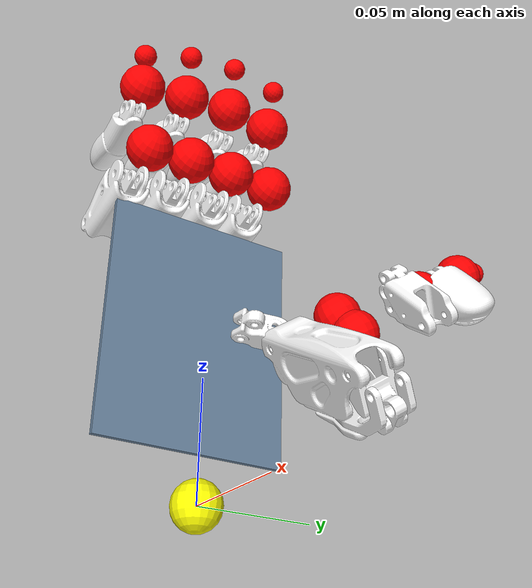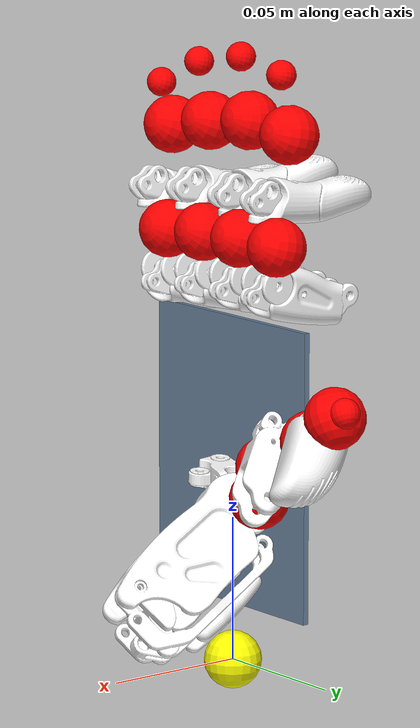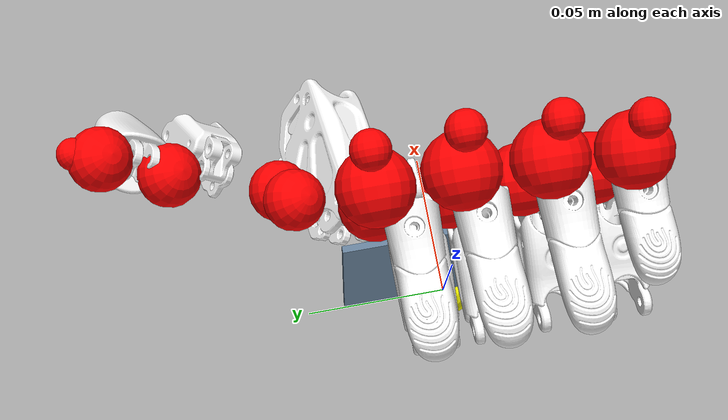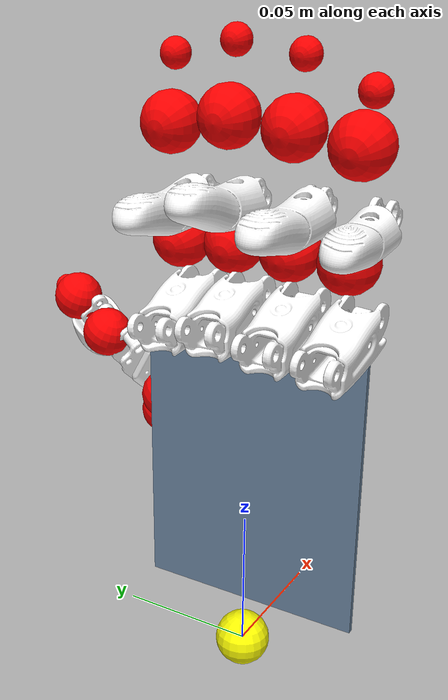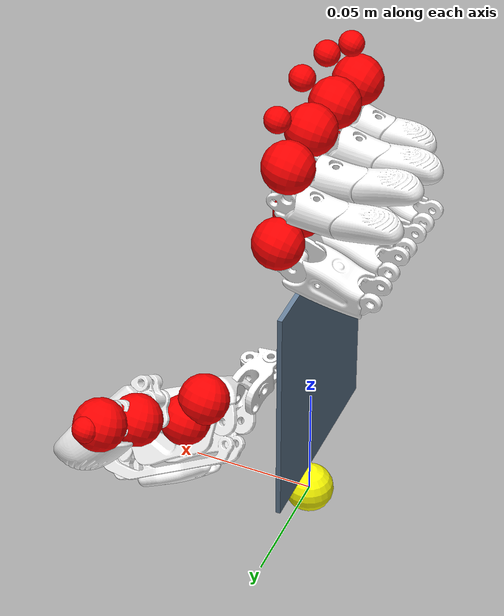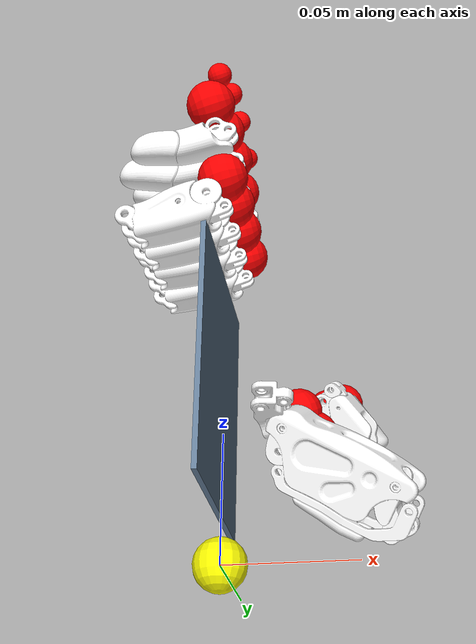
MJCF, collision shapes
<mujoco model="rm_75_description">
  <compiler angle="radian" autolimits="true"/>
  <statistic meansize="0.119253" extent="0.945417" center="-2.961e-06 0.00561221 0.418652"/>
  <asset>
    <material name="robot0:MatViz" specular="0.75" shininess="0.1" reflectance="0.5" rgba="0.93 0.93 0.93 1"></material>
    <material name="robot0:MatColl" specular="1" shininess="0.3" reflectance="0.5" rgba="0.4 0.5 0.6 1"></material>

    <mesh name="R_hand_base_link" file="/home/ubuntu/Documents/DexGraspNet/grasp_generation/mjcf/meshes/R_hand_base_link.STL"/>
    <mesh name="R_thumb_proximal_base" file="/home/ubuntu/Documents/DexGraspNet/grasp_generation/mjcf/meshes/R_thumb_proximal_base.STL"/>
    <mesh name="R_thumb_proximal" file="/home/ubuntu/Documents/DexGraspNet/grasp_generation/mjcf/meshes/R_thumb_proximal.STL"/>
    <mesh name="R_thumb_intermediate" file="/home/ubuntu/Documents/DexGraspNet/grasp_generation/mjcf/meshes/R_thumb_intermediate.STL"/>
    <mesh name="R_thumb_distal" file="/home/ubuntu/Documents/DexGraspNet/grasp_generation/mjcf/meshes/R_thumb_distal.STL"/>
    <mesh name="R_index_proximal" file="/home/ubuntu/Documents/DexGraspNet/grasp_generation/mjcf/meshes/R_index_proximal.STL"/>
    <mesh name="R_index_distal" file="/home/ubuntu/Documents/DexGraspNet/grasp_generation/mjcf/meshes/R_index_distal.STL"/>
    <mesh name="R_middle_proximal" file="/home/ubuntu/Documents/DexGraspNet/grasp_generation/mjcf/meshes/R_middle_proximal.STL"/>
    <mesh name="R_middle_distal" file="/home/ubuntu/Documents/DexGraspNet/grasp_generation/mjcf/meshes/R_middle_distal.STL"/>
    <mesh name="R_ring_proximal" file="/home/ubuntu/Documents/DexGraspNet/grasp_generation/mjcf/meshes/R_ring_proximal.STL"/>
    <mesh name="R_ring_distal" file="/home/ubuntu/Documents/DexGraspNet/grasp_generation/mjcf/meshes/R_ring_distal.STL"/>
    <mesh name="R_pinky_proximal" file="/home/ubuntu/Documents/DexGraspNet/grasp_generation/mjcf/meshes/R_pinky_proximal.STL"/>
    <mesh name="R_pinky_distal" file="/home/ubuntu/Documents/DexGraspNet/grasp_generation/mjcf/meshes/R_pinky_distal.STL"/>
  </asset>

  <default>
    <default class="base">
        <joint axis="0 0 1" range="-0.47 0.47"/>
        <position ctrlrange="-0.47 0.47"/>
    </default>
    <default class="proximal">
      <joint range="-0.196 1.61"/>
      <position ctrlrange="-0.196 1.61"/>
    </default>
    <default class="medial">
      <joint range="-0.174 1.709"/>
      <position ctrlrange="-0.174 1.709"/>
    </default>
    <default class="distal">
      <joint range="-0.227 1.618"/>
      <position ctrlrange="-0.227 1.618"/>
    </default>
    <default class="thumb_base">
        <joint range="0.263 1.396"/>
        <position ctrlrange="0 3.14" kp="0.5"/>
    </default>
    <default class="right_hand">
      <joint limited="true" damping="0.05" armature="0.0002" frictionloss="0.01"/>
      <general ctrllimited="true" forcelimited="true"></general>
      <geom friction="1 0.005 0.001" condim="3" margin="0.0005" contype="1" conaffinity="1"></geom>
    </default>

    <default class="robot0:D_Vizual">
        <geom material="robot0:MatViz" contype="0" conaffinity="0" group="1" type="mesh"></geom>
    </default>
    <default class="robot0:DC_Hand">
        <geom material="robot0:MatColl" contype="1" conaffinity="0" group="4"></geom>
    </default>

    <default class="rm_75">
      <material specular="0.5" shininess="0.25"/>
      <joint axis="0 1 0" range="-6.28319 6.28319" armature="0.1"/>
      <default class="visual">
        <geom type="mesh" contype="0" conaffinity="0" group="2"/>
      </default>
    </default>
  </default>

  <worldbody>
    <body name="origin">
      <geom name="origin" type="sphere" size="0.01" rgba="1 1 0 1"/>
    </body>
    <body name="right_hand_base" euler="0 0 -1.57">
      <body name="site_wrist">
        <site name="site_wrist" rgba="1 0 0 1"/>
        <geom name="site_wrist_visual" type="sphere" size="0.007" rgba="1 0 0 1"/>
      </body>
      <body childclass="right_hand" pos="0.078 0.248 0.08" euler="-1.57 -3.14 -3.14">
        <body name="R_hand_base" >
        <geom class="robot0:D_Vizual" name="robot0:D_Vizual_Base" quat="0.707107 -0.707107 0 0" type="mesh" rgba="1 1 1 0.5" mesh="R_hand_base_link"/>
        <geom class="robot0:DC_Hand" name="robot0:DC_Hand_Base" type="box" pos="-0.075 -0.01 0.25" quat="0.707107 -0.707107 0 0" size="0.04 0.001 0.05" rgba="0.4 0.5 0.6 0.1"></geom>
        </body>
        <body name="R_thumb_proximal_base" pos="-0.098633 -0.011364 0.23173" quat="0.990013 1.83152e-06 -0.140974 2.57024e-07">
          <inertial pos="-0.0048772 -0.010163 0.00044069" quat="0.075637 0.631378 -0.107678 0.764229" mass="0.0018869" diaginertia="8.66028e-08 6.87321e-08 4.94192e-08"/>
          <joint name="R_thumb_MCP_joint1" pos="0 0 0" axis="0 -1 0" range="0.0 1.3"/>
          <geom class="robot0:D_Vizual" name="robot0:D_Vizual_Thumb_1" type="mesh" rgba="1 1 1 0.5" mesh="R_thumb_proximal_base"/>
          <geom class="robot0:DC_Hand" name="robot0:DC_Hand_Thumb_1" type="mesh" rgba="1 1 1 0.5" mesh="R_thumb_proximal_base"/>
          <body name="R_thumb_proximal" pos="-0.0115 -0.011843 0" euler="1.571 2.577 -1.571">
            <inertial pos="-3.8592e-05 0.02533 -0.0017007" quat="0.656826 0.754039 0.00146914 -0.00128614" mass="0.0066075" diaginertia="2.78601e-06 2.43932e-06 8.64597e-07"/>
            <joint name="R_thumb_MCP_joint2" pos="0 0 0" axis="1 0 0" range="0 0.5"/>
            <geom class="robot0:D_Vizual" name="robot0:D_Vizual_Thumb_2" type="mesh" rgba="1 1 1 0.5" mesh="R_thumb_proximal"/>
            <geom class="robot0:DC_Hand" name="robot0:DC_Hand_Thumb_2" type="mesh" rgba="1 1 1 0.5" mesh="R_thumb_proximal"/>
            <body name="site_R_thumb_proximal" pos="0 0.027 0.0108">
              <site name="site_R_thumb_proximal" rgba="1 0 0 1"/>
              <geom name="site_R_thumb_proximal_visual" type="sphere" size="0.01" rgba="1 0 0 1"/>
            </body>
            <body name="site_R_thumb_proximal_side" pos="0.0046 0.027 0">
              <site name="site_R_thumb_proximal_side" rgba="1 0 0 1"/>
              <geom name="site_R_thumb_proximal_side_visual" type="sphere" size="0.01" rgba="1 0 0 1"/>
            </body>
            <body name="R_thumb_intermediate" pos="0 0.055863 0.0039241" quat="1.0 -0.0 0 0">
              <inertial pos="2.8437e-07 0.0072526 -0.0064293" quat="0.575988 0.817458 -0.000107087 6.96147e-05" mass="0.0037847" diaginertia="4.6531e-07 4.48088e-07 2.45662e-07"/>
              <joint name="R_thumb_PIP_joint" pos="0 0 0" axis="1 0 0" range="0 1"/>
              <geom class="robot0:D_Vizual" name="robot0:D_Vizual_Thumb_3" type="mesh" rgba="1 1 1 0.5" mesh="R_thumb_intermediate"/>
              <geom class="robot0:DC_Hand" name="robot0:DC_Hand_Thumb_3" type="mesh" rgba="1 1 1 0.5" mesh="R_thumb_intermediate"/>
              <body name="site_R_thumb_intermediate" pos="0 0.012 0.0005">
                <site name="site_R_thumb_intermediate" rgba="1 0 0 1"/>
                <geom name="site_R_thumb_intermediate_visual" type="sphere" size="0.01" rgba="1 0 0 1"/>
              </body>
              <body name="R_thumb_distal" pos="0 0.022558 -0.0020717" quat="0.999983 -0.00582097 0 0">
                <inertial pos="-3.3054e-06 0.010511 -0.00057863" quat="0.624404 0.781098 0.00147531 -0.00199963" mass="0.0033441" diaginertia="2.0026e-07 1.95252e-07 8.15973e-08"/>
                <joint name="R_thumb_DIP_joint" pos="0 0 0" axis="1 0 0" range="0 1.2"/>
                <body name="site_thumb" pos="0.0 0.02009 0.00059">
                  <site name="site_thumb" rgba="1 0 0 1"/>
                </body>
                <body name="site_R_thumb_distal" pos="0 0.012 0.002">
                  <site name="site_R_thumb_distal" rgba="1 0 0 1"/>
                  <geom  name="site_R_thumb_distal_visual" type="sphere" size="0.01" rgba="1 0 0 1"/>
                </body>
                <geom class="robot0:D_Vizual" name="robot0:D_Vizual_Thumb_4" type="mesh" rgba="1 1 1 0.5" mesh="R_thumb_distal"/>
                <geom class="robot0:DC_Hand" name="robot0:DC_Hand_Thumb_4" type="mesh" rgba="1 1 1 0.5" mesh="R_thumb_distal"/>
              </body>
            </body>
          </body>
        </body>
        <body name="R_index_proximal" pos="-0.094559 0.054025 0.24897" quat="-0.00212755 -0.0173224 0.992416 0.121677">
          <inertial pos="0.0099008 0.011884 0.0016958" quat="0.629448 0.777042 2.20645e-05 -2.45535e-05" mass="0.0042403" diaginertia="6.9398e-07 6.62877e-07 2.10913e-07"/>
          <joint name="R_index_MCP_joint" pos="0 0 0" axis="1 0 0" range="0 1.7"/>
          <geom class="robot0:D_Vizual" name="robot0:D_Vizual_Index_1" type="mesh" rgba="1 1 1 0.5" mesh="R_index_proximal"/>
          <geom class="robot0:DC_Hand" name="robot0:DC_Hand_Index_1" type="mesh" rgba="1 1 1 0.5" mesh="R_index_proximal"/>
          <body name="site_R_index_proximal" pos="0.01 0.013 0.0074">
            <site name="site_R_index_proximal" rgba="1 0 0 1"/>
            <geom name="site_R_index_proximal_visual" type="sphere" size="0.01" rgba="1 0 0 1"/>
          </body>
          <body name="R_index_distal" pos="0.001575 0.030445 0.010275" quat="0.999755 0.0221422 0 0">
            <inertial pos="0.0083258 0.019591 0.0019565" quat="0.581929 0.813239 4.32051e-07 6.03786e-07" mass="0.0045683" diaginertia="7.8179e-07 7.72465e-07 8.47248e-08"/>
            <joint name="R_index_DIP_joint" pos="0 0 0" axis="1 0 0" range="0 1.6"/>
            <body name="site_index" pos="0.00832 0.03917 0.00924">
              <site name="site_index" rgba="1 0 0 1"/>
            </body>
            <body name="site_R_index_distal" pos="0.00832 0.02 0.0012">
              <site name="site_R_index_distal" rgba="1 0 0 1"/>
              <geom name="site_R_index_distal_visual" type="sphere" size="0.01" rgba="1 0 0 1"/>
            </body>
            <geom class="robot0:D_Vizual" name="robot0:D_Vizual_Index_2" type="mesh" rgba="1 1 1 0.5" mesh="R_index_distal"/>
            <geom class="robot0:DC_Hand" name="robot0:DC_Hand_Index_2" type="mesh" rgba="1 1 1 0.5" mesh="R_index_distal"/>
          </body>
        </body>
        <body name="R_middle_proximal" pos="-0.077068 0.054042 0.24897" quat="-3.64455e-06 4.57949e-07 0.992198 0.124673">
          <inertial pos="0.008065 0.011884 0.0016958" quat="0.629448 0.777042 2.15784e-05 -2.62734e-05" mass="0.0042403" diaginertia="6.9397e-07 6.62866e-07 2.10914e-07"/>
          <joint name="R_middle_MCP_joint" pos="0 0 0" axis="1 0 0" range="0 1.7"/>
          <geom class="robot0:D_Vizual" name="robot0:D_Vizual_Middle_1" type="mesh" rgba="1 1 1 0.5" mesh="R_middle_proximal"/>
          <geom class="robot0:DC_Hand" name="robot0:DC_Hand_Middle_1" type="mesh" rgba="1 1 1 0.5" mesh="R_middle_proximal"/>
          <body name="site_R_middle_proximal" pos="0.0081 0.013 0.0074">
            <site name="site_R_middle_proximal" rgba="1 0 0 1"/>
            <geom name="site_R_middle_proximal_visual" type="sphere" size="0.01" rgba="1 0 0 1"/>
          </body>
          <body name="R_middle_distal" pos="0.0016673 0.030445 0.010275" quat="0.999363 0.0356989 0 0">
            <inertial pos="0.0063978 0.020807 0.0018039" quat="0.589614 0.807685 -6.23875e-05 4.98373e-05" mass="0.0050396" diaginertia="9.8384e-07 9.73281e-07 9.13985e-08"/>
            <joint name="R_middle_DIP_joint" pos="0 0 0" axis="1 0 0" range="0 1.6"/>
            <body name="site_middle" pos="0.0064 0.04272 0.00893">
              <site name="site_middle" rgba="1 0 0 1"/>
            </body>
            <body name="site_R_middle_distal" pos="0.0065 0.022 0.00125">
              <site name="site_R_middle_distal" rgba="1 0 0 1"/>
              <geom name="site_R_middle_distal_visual" type="sphere" size="0.01" rgba="1 0 0 1"/>
            </body>
            <geom class="robot0:D_Vizual" name="robot0:D_Vizual_Middle_2" type="mesh" rgba="1 1 1 0.5" mesh="R_middle_distal"/>
            <geom class="robot0:DC_Hand" name="robot0:DC_Hand_Middle_2" type="mesh" rgba="1 1 1 0.5" mesh="R_middle_distal"/>
          </body>
        </body>
        <body name="R_ring_proximal" pos="-0.057894 0.053119 0.24897" quat="0.00325992 0.0259732 0.991858 0.12463">
          <inertial pos="0.0080207 0.011884 0.0016959" quat="0.629449 0.777042 1.88154e-05 -2.40552e-05" mass="0.0042403" diaginertia="6.9397e-07 6.62866e-07 2.10914e-07"/>
          <joint name="R_ring_MCP_joint" pos="0 0 0" axis="1 0 0" range="0 1.7"/>
          <geom class="robot0:D_Vizual" name="robot0:D_Vizual_Ring_1" type="mesh" rgba="1 1 1 0.5" mesh="R_ring_proximal"/>
          <geom class="robot0:DC_Hand" name="robot0:DC_Hand_Ring_1" type="mesh" rgba="1 1 1 0.5" mesh="R_ring_proximal"/>
          <body name="site_R_ring_proximal" pos="0.0081 0.013 0.0074">
            <site name="site_R_ring_proximal" rgba="1 0 0 1"/>
            <geom name="site_R_ring_proximal_visual" type="sphere" size="0.01" rgba="1 0 0 1"/>
          </body>
          <body name="R_ring_distal" pos="0 0.030445 0.010275" quat="0.999803 0.0198727 0 0">
            <inertial pos="0.0080209 0.019591 0.0019565" quat="0.581926 0.813242 0 0" mass="0.0045683" diaginertia="7.8177e-07 7.72447e-07 8.47227e-08"/>
            <joint name="R_ring_DIP_joint" pos="0 0 0" axis="1 0 0" range="0 1.6"/>
            <body name="site_ring" pos="0.00801 0.03915 0.00934">
              <site name="site_ring" rgba="1 0 0 1"/>
            </body>
            <body name="site_R_ring_distal" pos="0.0080 0.02 0.0012">
              <site name="site_R_ring_distal" rgba="1 0 0 1"/>
              <geom name="site_R_ring_distal_visual" type="sphere" size="0.01" rgba="1 0 0 1"/>
            </body>
            <geom class="robot0:D_Vizual" name="robot0:D_Vizual_Ring_2" type="mesh" rgba="1 1 1 0.5" mesh="R_ring_distal"/>
            <geom class="robot0:DC_Hand" name="robot0:DC_Hand_Ring_2" type="mesh" rgba="1 1 1 0.5" mesh="R_ring_distal"/>
          </body>
        </body>
        <body name="R_pinky_proximal" pos="-0.038882 0.051205 0.24897" quat="-0.00652853 -0.0519273 -0.990838 -0.124502">
          <inertial pos="0.0078887 0.011884 0.0016959" quat="0.629449 0.777042 2.01737e-05 -2.54775e-05" mass="0.0042403" diaginertia="6.9397e-07 6.62866e-07 2.10914e-07"/>
          <joint name="R_pinky_MCP_joint" pos="0 0 0" axis="1 0 0" range="0 1.7"/>
          <geom class="robot0:D_Vizual" name="robot0:D_Vizual_Pinky_1" type="mesh" rgba="1 1 1 0.5" mesh="R_pinky_proximal"/>
          <geom class="robot0:DC_Hand" name="robot0:DC_Hand_Pinky_1" type="mesh" rgba="1 1 1 0.5" mesh="R_pinky_proximal"/>
          <body name="site_R_pinky_proximal" pos="0.0081 0.013 0.0074">
            <site name="site_R_pinky_proximal" rgba="1 0 0 1"/>
            <geom name="site_R_pinky_proximal_visual" type="sphere" size="0.01" rgba="1 0 0 1"/>
          </body>
          <body name="R_pinky_distal" pos="0 0.030445 0.010275" quat="0.999822 -0.0188444 0 0">
            <inertial pos="0.0078857 0.016239 0.0022243" quat="0.553304 0.832968 0.0036878 -0.00236477" mass="0.0035996" diaginertia="4.4867e-07 4.43716e-07 6.56536e-08"/>
            <joint name="R_pinky_DIP_joint" pos="0 0 0" axis="1 0 0" range="0 1.6"/>
            <body name="site_pinky" pos="0.00791 0.03113 0.00924">
              <site name="site_pinky" rgba="1 0 0 1"/>
            </body>
            <body name="site_R_pinky_distal" pos="0.0079 0.018 0.0016">
              <site name="site_R_pinky_distal" rgba="1 0 0 1"/>
              <geom name="site_R_pinky_distal_visual" type="sphere" size="0.01" rgba="1 0 0 1"/>
            </body>
            <geom class="robot0:D_Vizual" name="robot0:D_Vizual_Pinky_2" type="mesh" rgba="1 1 1 0.5" mesh="R_pinky_distal"/>
            <geom class="robot0:DC_Hand" name="robot0:DC_Hand_Pinky_2" type="mesh" rgba="1 1 1 0.5" mesh="R_pinky_distal"/>
          </body>
        </body>
      </body>
    </body>
  </worldbody>

  <contact>
    <exclude body1="R_hand_base" body2="R_index_proximal"/>
    <exclude body1="R_hand_base" body2="R_middle_proximal"/>
    <exclude body1="R_hand_base" body2="R_ring_proximal"/>
    <exclude body1="R_hand_base" body2="R_pinky_proximal"/>
    <exclude body1="R_hand_base" body2="R_thumb_proximal"/>
    <exclude body1="R_hand_base" body2="R_thumb_proximal_base"/>
    <exclude body1="R_thumb_proximal_base" body2="R_thumb_proximal"/>
    <exclude body1="R_thumb_proximal" body2="R_thumb_intermediate"/>
    <exclude body1="R_thumb_proximal_base" body2="R_thumb_intermediate"/>
    <exclude body1="R_thumb_intermediate" body2="R_thumb_distal"/>
  </contact>

  <tendon>
    <fixed name="index_tendon" limited="true" range="-0.001 0.001">
        <joint joint="R_index_MCP_joint" coef="0.00705"/>
        <joint joint="R_index_DIP_joint" coef="-0.0085" />
    </fixed>
    <fixed name="middle_tendon" limited="true" range="-0.001 0.001">
        <joint joint="R_middle_MCP_joint" coef="0.00705"/>
        <joint joint="R_middle_DIP_joint" coef="-0.0085" />
    </fixed>
    <fixed name="ring_tendon" limited="true" range="-0.001 0.001">
        <joint joint="R_ring_MCP_joint" coef="0.00705"/>
        <joint joint="R_ring_DIP_joint" coef="-0.0085" />
    </fixed>
    <fixed name="pinky_tendon" limited="true" range="-0.001 0.001">
        <joint joint="R_pinky_MCP_joint" coef="0.00705"/>
        <joint joint="R_pinky_DIP_joint" coef="-0.0085" />
    </fixed>
    <fixed name="thumb_tendon_1" limited="true" range="-0.001 0.001">
        <joint joint="R_thumb_MCP_joint2" coef="-0.00705"/>
        <joint joint="R_thumb_PIP_joint" coef="0.0025"/>
        <joint joint="R_thumb_DIP_joint" coef="0.0015" />
    </fixed>
  </tendon>

  <actuator>
    <position name="index_tendon_a" joint="R_index_MCP_joint" class="thumb_base"/>
    <position name="middle_tendon_a" joint="R_middle_MCP_joint" class="thumb_base"/>
    <position name="ring_tendon_a" joint="R_ring_MCP_joint" class="thumb_base"/>
    <position name="pinky_tendon_a" joint="R_pinky_MCP_joint" class="thumb_base"/>
    <position name="thumb_tendon_b" joint="R_thumb_MCP_joint2" class="thumb_base"/>
    <position name="thumb_joint_1" joint="R_thumb_MCP_joint1" class="thumb_base"/>
  </actuator>
</mujoco>
